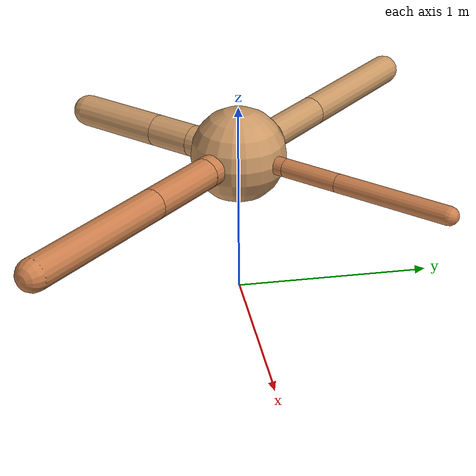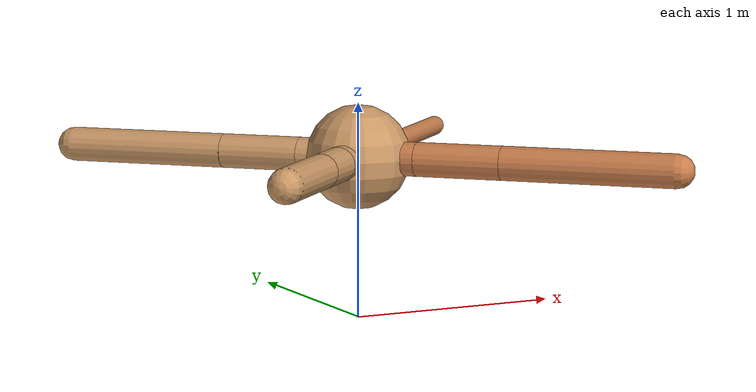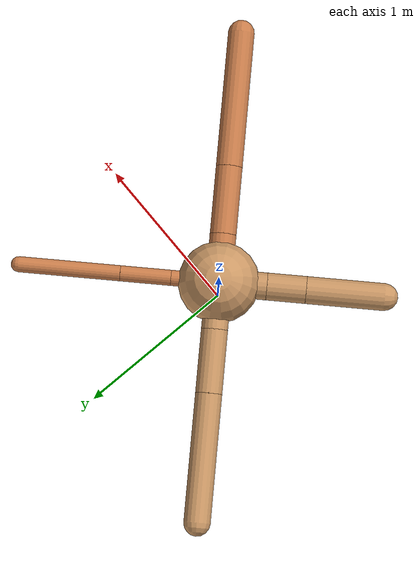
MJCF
<?xml version="1.0" ?>
<mujoco model="ant">

	<compiler angle="degree" coordinate="local" inertiafromgeom="true"/>

	<option integrator="RK4" timestep="0.01"/>

	<custom>

		<numeric data="0.0 0.0 0.55 1.0 0.0 0.0 0.0 0.0 1.0 0.0 -1.0 0.0 -1.0 0.0 1.0" name="init_qpos"/>

	</custom>

	<default>

		<joint armature="1" damping="1" limited="true"/>

		<geom conaffinity="0" condim="3" density="5.0" friction="1.5 0.1 0.1" margin="0.01" rgba="0.8 0.6 0.4 1"/>

	</default>

	<worldbody>

		<body name="torso" pos="0 0 0.75">

			<geom name="torso_geom" pos="0 0 0" size="0.24209821889171385" type="sphere"/>

			<!--joint armature="0" damping="0" limited="false" margin="0.01" name="root" pos="0 0 0" type="free"/-->

			<body name="front_left_leg" pos="0 0 0">

				<geom fromto="0 0 0 0.2 0.2 0" name="aux_1_geom" size="0.046199498425363375" type="capsule" rgba=".8 .5 .3 1"/>

				<body name="aux_1" pos="0.2 0.2 0">

					<joint axis="0 0 1" name="hip_1" pos="0.0 0.0 0.0" range="-40 40" type="hinge"/>

					<geom fromto="0 0 0 0.21235379896731377 0.21235379896731377 0" name="left_leg_geom" size="0.046199498425363375" type="capsule" rgba=".8 .5 .3 1"/>

					<body pos="0.21235379896731377 0.21235379896731377 0" name="front_left_foot">

						<joint axis="-1 1 0" name="ankle_1" pos="0.0 0.0 0.0" range="30 100" type="hinge"/>

						<geom fromto="0 0 0 0.42470759793462753 0.42470759793462753 0" name="left_ankle_geom" size="0.046199498425363375" type="capsule" rgba=".8 .5 .3 1"/>

					</body>

				</body>

			</body>

			<body name="front_right_leg" pos="0 0 0">

				<geom fromto="0 0 0 -0.2 0.2 0" name="aux_2_geom" size="0.07924083106251409" type="capsule"/>

				<body name="aux_2" pos="-0.2 0.2 0">

					<joint axis="0 0 1" name="hip_2" pos="0.0 0.0 0.0" range="-40 40" type="hinge"/>

					<geom fromto="0 0 0 -0.26697397715114024 0.26697397715114024 0" name="right_leg_geom" size="0.07924083106251409" type="capsule"/>

					<body pos="-0.26697397715114024 0.26697397715114024 0" name="front_right_foot">

						<joint axis="1 1 0" name="ankle_2" pos="0.0 0.0 0.0" range="-100 -30" type="hinge"/>

						<geom fromto="0 0 0 -0.5339479543022805 0.5339479543022805 0" name="right_ankle_geom" size="0.07924083106251409" type="capsule"/>

					</body>

				</body>

			</body>

			<body name="left_back_leg" pos="0 0 0">

				<geom fromto="0 0 0 -0.2 -0.2 0" name="aux_3_geom" size="0.08096442046515512" type="capsule"/>

				<body name="aux_3" pos="-0.2 -0.2 0">

					<joint axis="0 0 1" name="hip_3" pos="0.0 0.0 0.0" range="-40 40" type="hinge"/>

					<geom fromto="0 0 0 -0.16386429775279374 -0.16386429775279374 0" name="back_leg_geom" size="0.08096442046515512" type="capsule"/>

					<body pos="-0.16386429775279374 -0.16386429775279374 0" name="left_back_foot">

						<joint axis="-1 1 0" name="ankle_3" pos="0.0 0.0 0.0" range="-100 -30" type="hinge"/>

						<geom fromto="0 0 0 -0.32772859550558747 -0.32772859550558747 0" name="third_ankle_geom" size="0.08096442046515512" type="capsule"/>

					</body>

				</body>

			</body>

			<body name="right_back_leg" pos="0 0 0">

				<geom fromto="0 0 0 0.2 -0.2 0" name="aux_4_geom" size="0.0788744182417598" type="capsule" rgba=".8 .5 .3 1"/>

				<body name="aux_4" pos="0.2 -0.2 0">

					<joint axis="0 0 1" name="hip_4" pos="0.0 0.0 0.0" range="-40 40" type="hinge"/>

					<geom fromto="0 0 0 0.2871810851914673 -0.2871810851914673 0" name="rightback_leg_geom" size="0.0788744182417598" type="capsule" rgba=".8 .5 .3 1"/>

					<body pos="0.2871810851914673 -0.2871810851914673 0" name="right_back_foot">

						<joint axis="1 1 0" name="ankle_4" pos="0.0 0.0 0.0" range="30 100" type="hinge"/>

						<geom fromto="0 0 0 0.5743621703829346 -0.5743621703829346 0" name="fourth_ankle_geom" size="0.0788744182417598" type="capsule" rgba=".8 .5 .3 1"/>

					</body>

				</body>

			</body>

		</body>

	</worldbody>

	<actuator>

		<motor ctrllimited="true" ctrlrange="-1.0 1.0" joint="hip_4" gear="150"/>

		<motor ctrllimited="true" ctrlrange="-1.0 1.0" joint="ankle_4" gear="150"/>

		<motor ctrllimited="true" ctrlrange="-1.0 1.0" joint="hip_1" gear="150"/>

		<motor ctrllimited="true" ctrlrange="-1.0 1.0" joint="ankle_1" gear="150"/>

		<motor ctrllimited="true" ctrlrange="-1.0 1.0" joint="hip_2" gear="150"/>

		<motor ctrllimited="true" ctrlrange="-1.0 1.0" joint="ankle_2" gear="150"/>

		<motor ctrllimited="true" ctrlrange="-1.0 1.0" joint="hip_3" gear="150"/>

		<motor ctrllimited="true" ctrlrange="-1.0 1.0" joint="ankle_3" gear="150"/>

	</actuator>

</mujoco>
